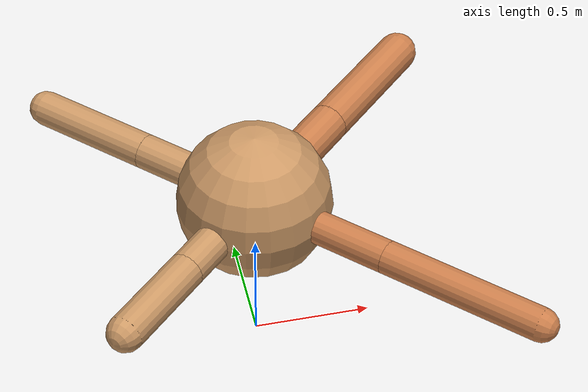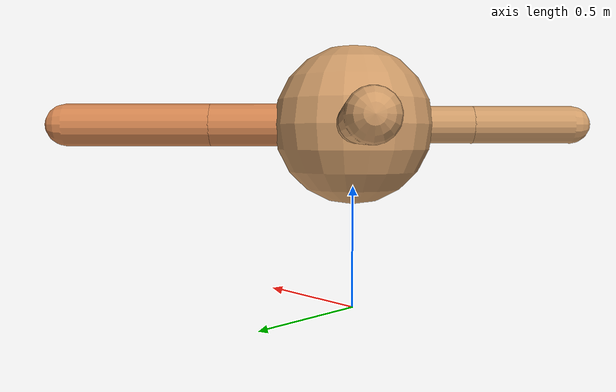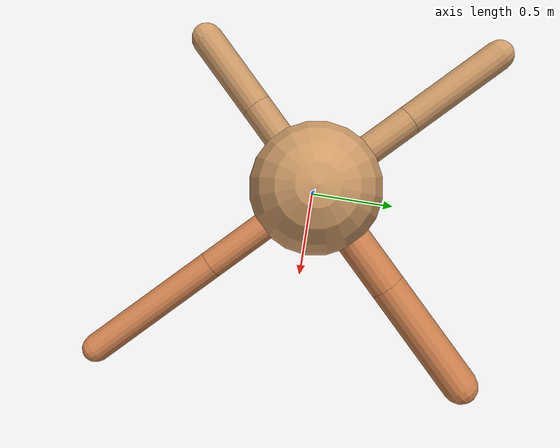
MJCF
<?xml version="1.0" ?>
<mujoco model="ant">

	<compiler angle="degree" coordinate="local" inertiafromgeom="true"/>

	<option integrator="RK4" timestep="0.01"/>

	<custom>

		<numeric data="0.0 0.0 0.55 1.0 0.0 0.0 0.0 0.0 1.0 0.0 -1.0 0.0 -1.0 0.0 1.0" name="init_qpos"/>

	</custom>

	<default>

		<joint armature="1" damping="1" limited="true"/>

		<geom conaffinity="0" condim="3" density="5.0" friction="1.5 0.1 0.1" margin="0.01" rgba="0.8 0.6 0.4 1"/>

	</default>

	<worldbody>

		<body name="torso" pos="0 0 0.75">

			<geom name="torso_geom" pos="0 0 0" size="0.3216133569050862" type="sphere"/>

			<!--joint armature="0" damping="0" limited="false" margin="0.01" name="root" pos="0 0 0" type="free"/-->

			<body name="front_left_leg" pos="0 0 0">

				<geom fromto="0 0 0 0.2 0.2 0" name="aux_1_geom" size="0.086773385267795" type="capsule" rgba=".8 .5 .3 1"/>

				<body name="aux_1" pos="0.2 0.2 0">

					<joint axis="0 0 1" name="hip_1" pos="0.0 0.0 0.0" range="-40 40" type="hinge"/>

					<geom fromto="0 0 0 0.20738348109804458 0.20738348109804458 0" name="left_leg_geom" size="0.086773385267795" type="capsule" rgba=".8 .5 .3 1"/>

					<body pos="0.20738348109804458 0.20738348109804458 0" name="front_left_foot">

						<joint axis="-1 1 0" name="ankle_1" pos="0.0 0.0 0.0" range="30 100" type="hinge"/>

						<geom fromto="0 0 0 0.41476696219608916 0.41476696219608916 0" name="left_ankle_geom" size="0.086773385267795" type="capsule" rgba=".8 .5 .3 1"/>

					</body>

				</body>

			</body>

			<body name="front_right_leg" pos="0 0 0">

				<geom fromto="0 0 0 -0.2 0.2 0" name="aux_2_geom" size="0.07424504015610592" type="capsule"/>

				<body name="aux_2" pos="-0.2 0.2 0">

					<joint axis="0 0 1" name="hip_2" pos="0.0 0.0 0.0" range="-40 40" type="hinge"/>

					<geom fromto="0 0 0 -0.18631584380925426 0.18631584380925426 0" name="right_leg_geom" size="0.07424504015610592" type="capsule"/>

					<body pos="-0.18631584380925426 0.18631584380925426 0" name="front_right_foot">

						<joint axis="1 1 0" name="ankle_2" pos="0.0 0.0 0.0" range="-100 -30" type="hinge"/>

						<geom fromto="0 0 0 -0.3726316876185085 0.3726316876185085 0" name="right_ankle_geom" size="0.07424504015610592" type="capsule"/>

					</body>

				</body>

			</body>

			<body name="left_back_leg" pos="0 0 0">

				<geom fromto="0 0 0 -0.2 -0.2 0" name="aux_3_geom" size="0.0755702195317407" type="capsule"/>

				<body name="aux_3" pos="-0.2 -0.2 0">

					<joint axis="0 0 1" name="hip_3" pos="0.0 0.0 0.0" range="-40 40" type="hinge"/>

					<geom fromto="0 0 0 -0.14035256226402182 -0.14035256226402182 0" name="back_leg_geom" size="0.0755702195317407" type="capsule"/>

					<body pos="-0.14035256226402182 -0.14035256226402182 0" name="left_back_foot">

						<joint axis="-1 1 0" name="ankle_3" pos="0.0 0.0 0.0" range="-100 -30" type="hinge"/>

						<geom fromto="0 0 0 -0.28070512452804364 -0.28070512452804364 0" name="third_ankle_geom" size="0.0755702195317407" type="capsule"/>

					</body>

				</body>

			</body>

			<body name="right_back_leg" pos="0 0 0">

				<geom fromto="0 0 0 0.2 -0.2 0" name="aux_4_geom" size="0.06827574574474632" type="capsule" rgba=".8 .5 .3 1"/>

				<body name="aux_4" pos="0.2 -0.2 0">

					<joint axis="0 0 1" name="hip_4" pos="0.0 0.0 0.0" range="-40 40" type="hinge"/>

					<geom fromto="0 0 0 0.23704003075493865 -0.23704003075493865 0" name="rightback_leg_geom" size="0.06827574574474632" type="capsule" rgba=".8 .5 .3 1"/>

					<body pos="0.23704003075493865 -0.23704003075493865 0" name="right_back_foot">

						<joint axis="1 1 0" name="ankle_4" pos="0.0 0.0 0.0" range="30 100" type="hinge"/>

						<geom fromto="0 0 0 0.4740800615098773 -0.4740800615098773 0" name="fourth_ankle_geom" size="0.06827574574474632" type="capsule" rgba=".8 .5 .3 1"/>

					</body>

				</body>

			</body>

		</body>

	</worldbody>

	<actuator>

		<motor ctrllimited="true" ctrlrange="-1.0 1.0" joint="hip_4" gear="150"/>

		<motor ctrllimited="true" ctrlrange="-1.0 1.0" joint="ankle_4" gear="150"/>

		<motor ctrllimited="true" ctrlrange="-1.0 1.0" joint="hip_1" gear="150"/>

		<motor ctrllimited="true" ctrlrange="-1.0 1.0" joint="ankle_1" gear="150"/>

		<motor ctrllimited="true" ctrlrange="-1.0 1.0" joint="hip_2" gear="150"/>

		<motor ctrllimited="true" ctrlrange="-1.0 1.0" joint="ankle_2" gear="150"/>

		<motor ctrllimited="true" ctrlrange="-1.0 1.0" joint="hip_3" gear="150"/>

		<motor ctrllimited="true" ctrlrange="-1.0 1.0" joint="ankle_3" gear="150"/>

	</actuator>

</mujoco>
